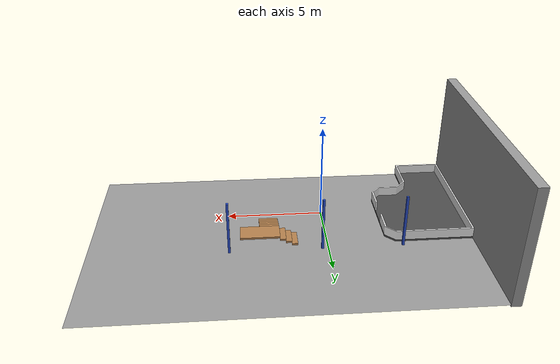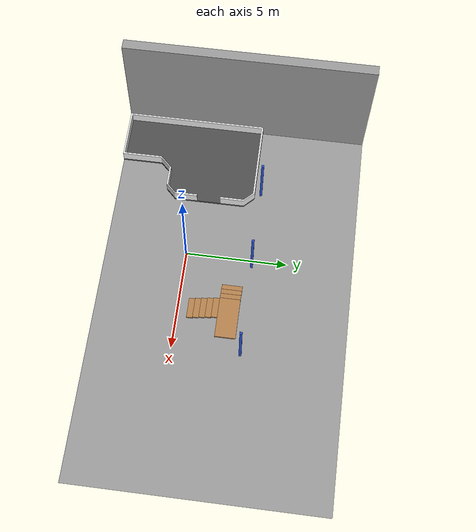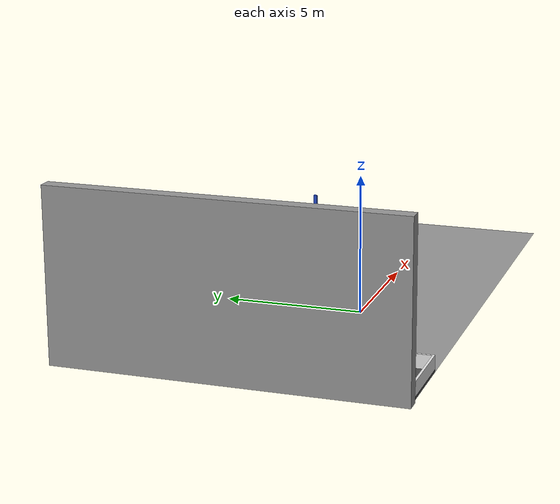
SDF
<sdf version="1.4">
 <world name="default">
  <physics type="ode">
   <gravity>0 0 -9.81</gravity>
   <ode>
    <solver><type>quick</type><iters>20</iters><sor>1.0</sor></solver>
    <constraints>
     <cfm>0.0</cfm>
     <erp>0.2</erp>
     <contact_max_correcting_vel>100.0</contact_max_correcting_vel>
     <contact_surface_layer>0.0</contact_surface_layer>
    </constraints>
   </ode>
   <real_time_update_rate>1000</real_time_update_rate>
   <max_step_size>0.001</max_step_size>
  </physics>
  <include><uri>model://sun</uri></include>
  <include><uri>model://gerard_bauzil_walls</uri></include>
  <include><uri>model://koroibot_stair_cases</uri></include>
 </world>
</sdf>

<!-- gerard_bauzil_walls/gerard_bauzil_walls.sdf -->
<sdf version='1.4'>
  <model name='m_walls_gerard_bauzil'>
      <link name='Walls_Gerard_Bauzil'>
        <collision name='Walls_Gerard_Bauzil_Collision'>
          <geometry>
            <mesh>
              <uri>model://gerard_bauzil_walls/meshes/gerard_bauzil_walls_v2.dae</uri>
            </mesh>
          </geometry>
          <pose>0.000000 0.000000 0.0000 0.000000 0.000000 0.000000</pose>
          <surface>
            <bounce/>
            <friction>
              <ode/>
            </friction>
            <contact>
              <ode/>
            </contact>
          </surface>
        </collision>
        <visual name='Walls_Gerard_Bauzil_Visual'>
          <pose>0.000000 0.000000 0.0000 0.000000 0.000000 0.000000</pose>
          <geometry>
            <mesh>
              <uri>model://gerard_bauzil_walls/meshes/gerard_bauzil_walls_v2.dae</uri>
            </mesh>
          </geometry>
          <material>
            <script>
              <uri>file://media/materials/scripts/gazebo.material</uri>
              <name>Gazebo/Grey</name>
            </script>
          </material>
        </visual>
        <velocity_decay>
          <linear>0.000000</linear>
          <angular>0.000000</angular>
        </velocity_decay>
        <pose>0.000 0.00 0.000000 0.000000 0.000000 0.00</pose>
        <self_collide>0</self_collide>
        <kinematic>0</kinematic>
        <gravity>1</gravity>
      </link>
     <link name='Estrade_Gerard_Bauzil'>
        <collision name='Estrade_Gerard_Bauzil_Collision'>
          <geometry>
            <mesh>
              <uri>model://gerard_bauzil_walls/meshes/estrade_v2.dae</uri>
            </mesh>
          </geometry>
          <pose>0.000000 0.000000 0.0000 0.000000 0.000000 0.000000</pose>
          <surface>
            <bounce/>
            <friction>
              <ode/>
            </friction>
            <contact>
              <ode/>
            </contact>
          </surface>
        </collision>
        <visual name='Estrade_Gerard_Bauzil_Visual'>
          <pose>0.000000 0.000000 0.0000 0.000000 0.000000 0.000000</pose>
          <geometry>
            <mesh>
              <uri>model://gerard_bauzil_walls/meshes/estrade_v2.dae</uri>
            </mesh>
          </geometry>
          <material>
            <script>
              <uri>file://media/materials/scripts/gazebo.material</uri>
              <name>Gazebo/DarkGrey</name>
            </script>
          </material>
        </visual>
        <velocity_decay>
          <linear>0.000000</linear>
          <angular>0.000000</angular>
        </velocity_decay>
        <pose>0.000 0.00 0.000000 0.000000 0.000000 0.00</pose>
        <self_collide>0</self_collide>
        <kinematic>0</kinematic>
        <gravity>1</gravity>
      </link>
     <link name='Barrier_Gerard_Bauzil'>
        <collision name='Barrier_Gerard_Bauzil_Collision'>
          <geometry>
            <mesh>
              <uri>model://gerard_bauzil_walls/meshes/barrier_v2.dae</uri>
            </mesh>
          </geometry>
          <pose>0.000000 0.000000 0.0000 0.000000 0.000000 0.000000</pose>
          <surface>
            <bounce/>
            <friction>
              <ode/>
            </friction>
            <contact>
              <ode/>
            </contact>
          </surface>
        </collision>
        <visual name='Barrier_Gerard_Bauzil_Visual'>
          <pose>0.000000 0.000000 0.0000 0.000000 0.000000 0.000000</pose>
          <geometry>
            <mesh>
              <uri>model://gerard_bauzil_walls/meshes/barrier_v2.dae</uri>
            </mesh>
          </geometry>
          <material>
            <script>
              <uri>file://media/materials/scripts/gazebo.material</uri>
              <name>Gazebo/White</name>
            </script>
          </material>
        </visual>
        <velocity_decay>
          <linear>0.000000</linear>
          <angular>0.000000</angular>
        </velocity_decay>
        <pose>0.000 0.00 0.000000 0.000000 0.000000 0.00</pose>
        <self_collide>0</self_collide>
        <kinematic>0</kinematic>
        <gravity>1</gravity>
      </link>
     <link name='Columns_Gerard_Bauzil'>
        <collision name='Columns_Gerard_Bauzil_Collision'>
          <geometry>
            <mesh>
              <uri>model://gerard_bauzil_walls/meshes/blue-column_v2.dae</uri>
            </mesh>
          </geometry>
          <pose>0.3 3.3 0.0 0.0 0.0 0.0</pose>
          <surface>
            <bounce/>
            <friction>
              <ode/>
            </friction>
            <contact>
              <ode/>
            </contact>
          </surface>
        </collision>
        <visual name='Columns_Gerard_Bauzil_Visual'>
          <pose>0.3 3.3 0.0 0.0 0.0 0.0</pose>
          <geometry>
            <mesh>
              <uri>model://gerard_bauzil_walls/meshes/blue-column_v2.dae</uri>
            </mesh>
          </geometry>
          <material>
            <script>
              <uri>file://media/materials/scripts/gazebo.material</uri>
              <name>Gazebo/Blue</name>
            </script>
          </material>
        </visual>
        <velocity_decay>
          <linear>0.000000</linear>
          <angular>0.000000</angular>
        </velocity_decay>
        <pose>0.0 0.0 0.0 0.0 0.0 0.0</pose>
        <self_collide>0</self_collide>
        <kinematic>0</kinematic>
        <gravity>1</gravity>
      </link>
      <link name='Columns_Gerard_Bauzil_2'>
        <collision name='Columns_Gerard_Bauzil_Collision_2'>
          <geometry>
            <mesh>
              <uri>model://gerard_bauzil_walls/meshes/blue-column_v2.dae</uri>
            </mesh>
          </geometry>
          <pose>-3.795 3.3 0.0 0.0 0.0 0.0</pose>
          <surface>
            <bounce/>
            <friction>
              <ode/>
            </friction>
            <contact>
              <ode/>
            </contact>
          </surface>
        </collision>
        <visual name='Columns_Gerard_Bauzil_Visual_2'>
          <pose>-3.795 3.3 0.0 0.0 0.0 0.0</pose>
          <geometry>
            <mesh>
              <uri>model://gerard_bauzil_walls/meshes/blue-column_v2.dae</uri>
            </mesh>
          </geometry>
          <material>
            <script>
              <uri>file://media/materials/scripts/gazebo.material</uri>
              <name>Gazebo/Blue</name>
            </script>
          </material>
        </visual>
        <velocity_decay>
          <linear>0.0</linear>
          <angular>0.0</angular>
        </velocity_decay>
        <pose>0.0 0.0 0.0 0.0 0.0 0.0</pose>
        <self_collide>0</self_collide>
        <kinematic>0</kinematic>
        <gravity>1</gravity>
      </link>
      <link name='Columns_Gerard_Bauzil_3'>
        <collision name='Columns_Gerard_Bauzil_Collision_3'>
          <geometry>
            <mesh>
              <uri>model://gerard_bauzil_walls/meshes/blue-column_v2.dae</uri>
            </mesh>
          </geometry>
          <pose>4.96 3.3 0.0 0.0 0.0 0.0</pose>
          <surface>
            <bounce/>
            <friction>
              <ode/>
            </friction>
            <contact>
              <ode/>
            </contact>
          </surface>
        </collision>
        <visual name='Columns_Gerard_Bauzil_Visual_3'>
          <pose>4.96 3.3 0.0 0.0 0.0 0.0</pose>
          <geometry>
            <mesh>
              <uri>model://gerard_bauzil_walls/meshes/blue-column_v2.dae</uri>
            </mesh>
          </geometry>
          <material>
            <script>
              <uri>file://media/materials/scripts/gazebo.material</uri>
              <name>Gazebo/Blue</name>
            </script>
          </material>
        </visual>
        <velocity_decay>
          <linear>0.0</linear>
          <angular>0.0</angular>
        </velocity_decay>
        <pose>0.0 0.0 0.0 0.0 0.0 0.0</pose>
        <self_collide>0</self_collide>
        <kinematic>0</kinematic>
        <gravity>1</gravity>
      </link>
      <static>1</static>
    </model>
</sdf>

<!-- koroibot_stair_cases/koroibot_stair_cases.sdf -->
<sdf version='1.4'>
  <model name='m_staircases_gerard_bauzil'>
     <link name='Staircases_Gerard_Bauzil'>
        <collision name='Staircases_Gerard_Bauzil_Collision'>
          <geometry>
            <mesh>
              <uri>model://koroibot_stair_cases/meshes/stairmesh_v2.dae</uri>
            </mesh>
          </geometry>
          <pose>0.000000 0.500000 0.05 0.000000 0.000000 0.000000</pose>
          <surface>
            <bounce/>
            <friction>
              <ode/>
            </friction>
            <contact>
              <ode/>
            </contact>
          </surface>
        </collision>
        <visual name='Staircases_Gerard_Bauzil_Visual'>
          <pose>0.000000 0.500000 0.05000 0.000000 0.000000 0.000000</pose>
          <geometry>
            <mesh>
              <uri>model://koroibot_stair_cases/meshes/stairmesh_v2.dae</uri>
            </mesh>
          </geometry>
          <material>
            <script>
              <uri>file://media/materials/scripts/gazebo.material</uri>
              <name>Gazebo/WoodPallet</name>
            </script>
          </material>
          <material>Gazebo/Blue</material>
        </visual>
        <velocity_decay>
          <linear>0.000000</linear>
          <angular>0.000000</angular>
        </velocity_decay>
        <pose>1.5 2.0 0.0 0.0 0.0 0.0</pose>
        <self_collide>0</self_collide>
        <kinematic>0</kinematic>
        <gravity>1</gravity>
      </link>
     <link name='Staircases_Gerard_Bauzil_2'>
        <collision name='Staircases_Gerard_Bauzil_Collision_2'>
          <geometry>
            <mesh>
              <uri>model://koroibot_stair_cases/meshes/stairmesh_v2.dae</uri>
            </mesh>
          </geometry>
          <pose>0.300000 0.500000 0.2 0.000000 0.000000 0.000000</pose>
          <surface>
            <bounce/>
            <friction>
              <ode/>
            </friction>
            <contact>
              <ode/>
            </contact>
          </surface>
        </collision>
        <visual name='Staircases_Gerard_Bauzil_Visual_2'>
          <pose>0.300000 0.500000 0.2000 0.000000 0.000000 0.000000</pose>
          <geometry>
            <mesh>
              <uri>model://koroibot_stair_cases/meshes/stairmesh_v2.dae</uri>
            </mesh>
          </geometry>
          <material>
            <script>
              <uri>file://media/materials/scripts/gazebo.material</uri>
              <name>Gazebo/WoodPallet</name>
            </script>
          </material>
        </visual>
        <velocity_decay>
          <linear>0.000000</linear>
          <angular>0.000000</angular>
        </velocity_decay>
        <pose>1.5 2.0 0.0 0.0 0.0 0.0</pose>
        <self_collide>0</self_collide>
        <kinematic>0</kinematic>
        <gravity>1</gravity>
      </link>
      <link name='Staircases_Gerard_Bauzil_3'>
        <collision name='Staircases_Gerard_Bauzil_Collision_3'>
          <geometry>
            <mesh>
              <uri>model://koroibot_stair_cases/meshes/stairmesh_v2.dae</uri>
            </mesh>
          </geometry>
          <pose>0.600000 0.500000 0.35 0.000000 0.000000 0.000000</pose>
          <surface>
            <bounce/>
            <friction>
              <ode/>
            </friction>
            <contact>
              <ode/>
            </contact>
          </surface>
        </collision>
        <visual name='Staircases_Gerard_Bauzil_Visual_3'>
          <pose>0.600000 0.500000 0.350 0.000000 0.000000 0.000000</pose>
          <geometry>
            <mesh>
              <uri>model://koroibot_stair_cases/meshes/stairmesh_v2.dae</uri>
            </mesh>
          </geometry>
          <material>
            <script>
              <uri>file://media/materials/scripts/gazebo.material</uri>
              <name>Gazebo/WoodPallet</name>
            </script>
          </material>
        </visual>
        <velocity_decay>
          <linear>0.000000</linear>
          <angular>0.000000</angular>
        </velocity_decay>
        <pose>1.5 2.0 0.0 0.0 0.0 0.0</pose>
        <self_collide>0</self_collide>
        <kinematic>0</kinematic>
        <gravity>1</gravity>
      </link>
      <link name='Staircases_Gerard_Bauzil_4'>
        <collision name='Staircases_Gerard_Bauzil_Collision_4'>
          <geometry>
            <mesh>
              <uri>model://koroibot_stair_cases/meshes/stairmesh_v2.dae</uri>
            </mesh>
          </geometry>
          <pose>0.900000 0.500000 0.5 0.000000 0.000000 0.000000</pose>
          <surface>
            <bounce/>
            <friction>
              <ode/>
            </friction>
            <contact>
              <ode/>
            </contact>
          </surface>
        </collision>
        <visual name='Staircases_Gerard_Bauzil_Visual_4'>
          <pose>0.900000 0.500000 0.50 0.000000 0.000000 0.000000</pose>
          <geometry>
            <mesh>
              <uri>model://koroibot_stair_cases/meshes/stairplatform_v2.dae</uri>
            </mesh>
          </geometry>
          <material>
            <script>
              <uri>file://media/materials/scripts/gazebo.material</uri>
              <name>Gazebo/WoodPallet</name>
            </script>
          </material>
        </visual>
        <velocity_decay>
          <linear>0.000000</linear>
          <angular>0.000000</angular>
        </velocity_decay>
        <pose>1.5 2.0 0.0 0.0 0.0 0.0</pose>
        <self_collide>0</self_collide>
        <kinematic>0</kinematic>
        <gravity>1</gravity>
      </link>
      <link name='Staircases_Gerard_Bauzil_5'>
        <collision name='Staircases_Gerard_Bauzil_Collision_5'>
          <geometry>
            <mesh>
              <uri>model://koroibot_stair_cases/meshes/stairmesh_v2.dae</uri>
            </mesh>
          </geometry>
          <pose>1.400000 -0.300000 0.4 0.000000 0.000000 1.570000</pose>
          <surface>
            <bounce/>
            <friction>
              <ode/>
            </friction>
            <contact>
              <ode/>
            </contact>
          </surface>
        </collision>
        <visual name='Staircases_Gerard_Bauzil_Visual_5'>
          <pose>1.400000 -0.300000 0.40 0.000000 0.000000 1.570000</pose>
          <geometry>
            <mesh>
              <uri>model://koroibot_stair_cases/meshes/stairmesh_v2.dae</uri>
            </mesh>
          </geometry>
          <material>
            <script>
              <uri>file://media/materials/scripts/gazebo.material</uri>
              <name>Gazebo/WoodPallet</name>
            </script>
          </material>
        </visual>
        <velocity_decay>
          <linear>0.000000</linear>
          <angular>0.000000</angular>
        </velocity_decay>
        <pose>1.5 2.0 0.0 0.0 0.0 0.0</pose>
        <self_collide>0</self_collide>
        <kinematic>0</kinematic>
        <gravity>1</gravity>
      </link>
      <link name='Staircases_Gerard_Bauzil_6'>
        <collision name='Staircases_Gerard_Bauzil_Collision_6'>
          <geometry>
            <mesh>
              <uri>model://koroibot_stair_cases/meshes/stairmesh_v2.dae</uri>
            </mesh>
          </geometry>
          <pose>1.400000 -0.600000 0.3 0.000000 0.000000 1.570000</pose>
          <surface>
            <bounce/>
            <friction>
              <ode/>
            </friction>
            <contact>
              <ode/>
            </contact>
          </surface>
        </collision>
        <visual name='Staircases_Gerard_Bauzil_Visual_6'>
          <pose>1.400000 -0.600000 0.30 0.000000 0.000000 1.57000</pose>
          <geometry>
            <mesh>
              <uri>model://koroibot_stair_cases/meshes/stairmesh_v2.dae</uri>
            </mesh>
          </geometry>
          <material>
            <script>
              <uri>file://media/materials/scripts/gazebo.material</uri>
              <name>Gazebo/WoodPallet</name>
            </script>
          </material>
        </visual>
        <velocity_decay>
          <linear>0.000000</linear>
          <angular>0.000000</angular>
        </velocity_decay>
        <pose>1.5 2.0 0.0 0.0 0.0 0.0</pose>
        <self_collide>0</self_collide>
        <kinematic>0</kinematic>
        <gravity>1</gravity>
      </link>
      <link name='Staircases_Gerard_Bauzil_7'>
        <collision name='Staircases_Gerard_Bauzil_Collision_7'>
          <geometry>
            <mesh>
              <uri>model://koroibot_stair_cases/meshes/stairmesh_v2.dae</uri>
            </mesh>
          </geometry>
          <pose>1.400000 -0.900000 0.2 0.000000 0.000000 1.570000</pose>
          <surface>
            <bounce/>
            <friction>
              <ode/>
            </friction>
            <contact>
              <ode/>
            </contact>
          </surface>
        </collision>
        <visual name='Staircases_Gerard_Bauzil_Visual_7'>
          <pose>1.400000 -0.900000 0.2 0.000000 0.000000 1.57000</pose>
          <geometry>
            <mesh>
              <uri>model://koroibot_stair_cases/meshes/stairmesh_v2.dae</uri>
            </mesh>
          </geometry>
          <material>
            <script>
              <uri>file://media/materials/scripts/gazebo.material</uri>
              <name>Gazebo/WoodPallet</name>
            </script>
          </material>
        </visual>
        <velocity_decay>
          <linear>0.000000</linear>
          <angular>0.000000</angular>
        </velocity_decay>
        <pose>1.5 2.0 0.0 0.0 0.0 0.0</pose>
        <self_collide>0</self_collide>
        <kinematic>0</kinematic>
        <gravity>1</gravity>
      </link>
      <link name='Staircases_Gerard_Bauzil_8'>
        <collision name='Staircases_Gerard_Bauzil_Collision_8'>
          <geometry>
            <mesh>
              <uri>model://koroibot_stair_cases/meshes/stairmesh_v2.dae</uri>
            </mesh>
          </geometry>
          <pose>1.400000 -1.200000 0.1 0.000000 0.000000 1.570000</pose>
          <surface>
            <bounce/>
            <friction>
              <ode/>
            </friction>
            <contact>
              <ode/>
            </contact>
          </surface>
        </collision>
        <visual name='Staircases_Gerard_Bauzil_Visual_8'>
          <pose>1.400000 -1.200000 0.1 0.000000 0.000000 1.57000</pose>
          <geometry>
            <mesh>
              <uri>model://koroibot_stair_cases/meshes/stairmesh_v2.dae</uri>
            </mesh>
          </geometry>
          <material>
            <script>
              <uri>file://media/materials/scripts/gazebo.material</uri>
              <name>Gazebo/WoodPallet</name>
            </script>
          </material>
        </visual>
        <velocity_decay>
          <linear>0.000000</linear>
          <angular>0.000000</angular>
        </velocity_decay>
        <pose>1.5 2.0 0.0 0.0 0.0 0.0</pose>
        <self_collide>0</self_collide>
        <kinematic>0</kinematic>
        <gravity>1</gravity>
      </link>
      <link name='Staircases_Gerard_Bauzil_9'>
        <collision name='Staircases_Gerard_Bauzil_Collision_9'>
          <geometry>
            <mesh>
              <uri>model://koroibot_stair_cases/meshes/stairmesh_v2.dae</uri>
            </mesh>
          </geometry>
          <pose>1.400000 -1.500000 0.0 0.000000 0.000000 1.570000</pose>
          <surface>
            <bounce/>
            <friction>
              <ode/>
            </friction>
            <contact>
              <ode/>
            </contact>
          </surface>
        </collision>
        <visual name='Staircases_Gerard_Bauzil_Visual_9'>
          <pose>1.400000 -1.500000 0.0 0.000000 0.000000 1.57000</pose>
          <geometry>
            <mesh>
              <uri>model://koroibot_stair_cases/meshes/stairmesh_v2.dae</uri>
            </mesh>
          </geometry>
          <material>
            <script>
              <uri>file://media/materials/scripts/gazebo.material</uri>
              <name>Gazebo/WoodPallet</name>
            </script>
          </material>
        </visual>
        <velocity_decay>
          <linear>0.000000</linear>
          <angular>0.000000</angular>
        </velocity_decay>
        <pose>1.5 2.0 0.0 0.0 0.0 0.0</pose>
        <self_collide>0</self_collide>
        <kinematic>0</kinematic>
        <gravity>1</gravity>
      </link>
      <static>1</static>
    </model>
</sdf>
